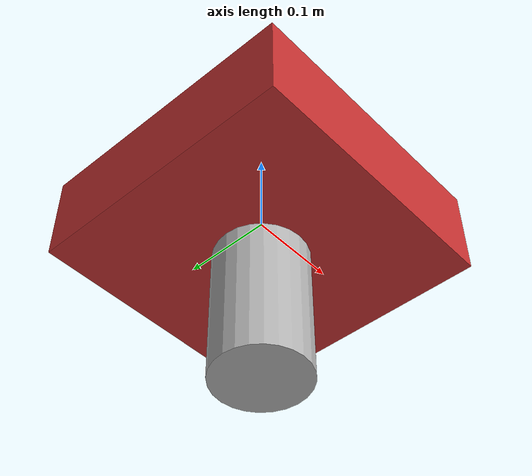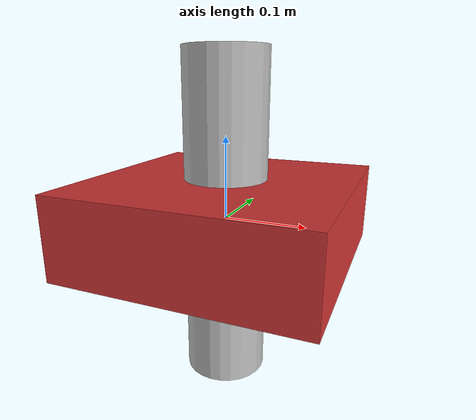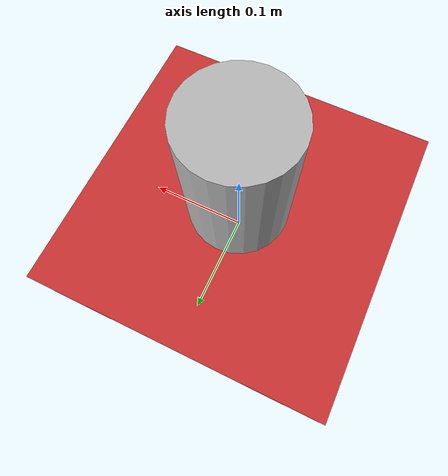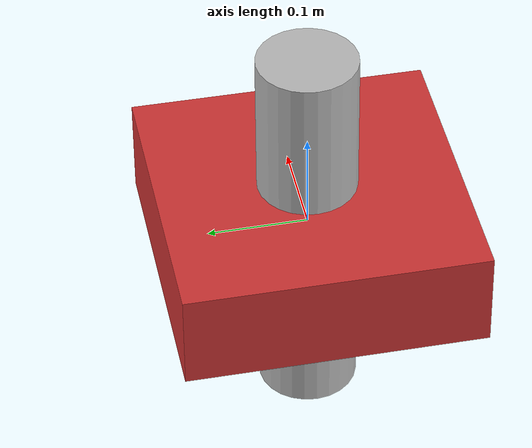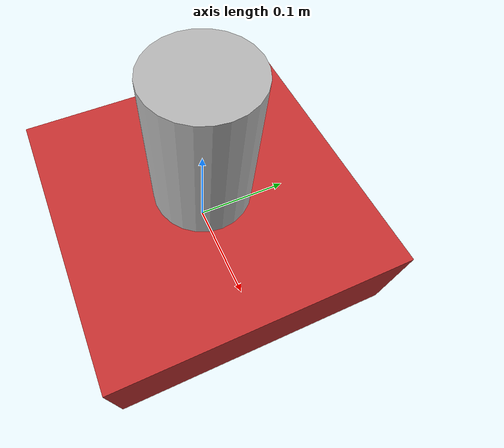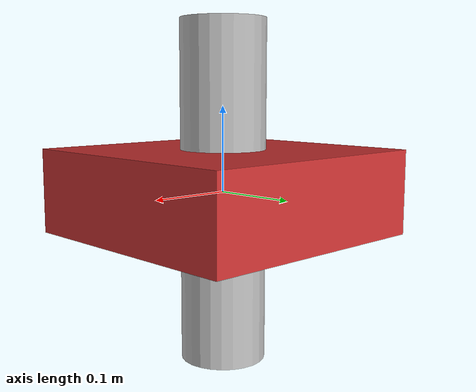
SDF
<sdf version="1.12">
  <model name="clean-bot">
    <link name="base">
      <inertial>
        <pose>0 0 0.1 0 0 0</pose>
        <mass>2.0</mass>
        <inertia>
          <ixx>0.1</ixx>
          <ixy>0</ixy>
          <ixz>0</ixz>
          <iyy>0.1</iyy>
          <iyz>0</iyz>
          <izz>0.1</izz>
        </inertia>
      </inertial>
      <visual name="base_visual">
        <pose>0 0 0 0 0 0</pose>
        <geometry>
          <box>
            <size>0.3 0.3 0.1</size>
          </box>
        </geometry>
        <material>
          <diffuse>0.8 0.2 0.2 1</diffuse>
        </material>
      </visual>
      <collision name="base_collision">
        <pose>0 0 0 0 0 0</pose>
        <geometry>
          <box>
            <size>0.3 0.3 0.1</size>
          </box>
        </geometry>
        <surface>
          <friction>
            <ode>
              <mu>0.8</mu>
              <mu2>0.6</mu2>
            </ode>
          </friction>
          <bounce>
            <restitution_coefficient>0.2</restitution_coefficient>
          </bounce>
        </surface>
      </collision>
    </link>
    <link name="link1">
      <pose relative_to="joint1">0 0 0 0 0 0</pose>
      <inertial>
        <mass>0.5</mass>
        <inertia>
          <ixx>0.01</ixx>
          <ixy>0</ixy>
          <ixz>0</ixz>
          <iyy>0.01</iyy>
          <iyz>0</iyz>
          <izz>0.01</izz>
        </inertia>
      </inertial>
      <visual name="link1_visual">
        <geometry>
          <cylinder>
            <radius>0.05</radius>
            <length>0.4</length>
          </cylinder>
        </geometry>
      </visual>
    </link>
    <joint name="joint1" type="revolute">
      <parent>base</parent>
      <child>link1</child>
      <pose relative_to="base">0 0 0 0 0 0</pose>
      <axis>
        <xyz>0 0 1</xyz>
        <limit>
          <lower>-1.5</lower>
          <upper>1.5</upper>
          <effort>10</effort>
          <velocity>2</velocity>
        </limit>
        <dynamics>
          <damping>0.1</damping>
          <friction>0.05</friction>
        </dynamics>
      </axis>
    </joint>
  </model>
</sdf>
